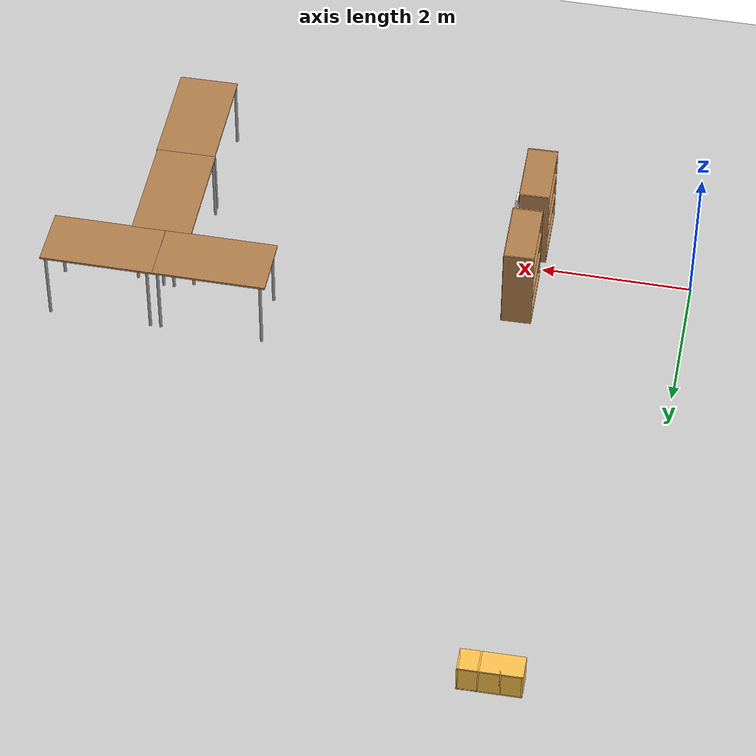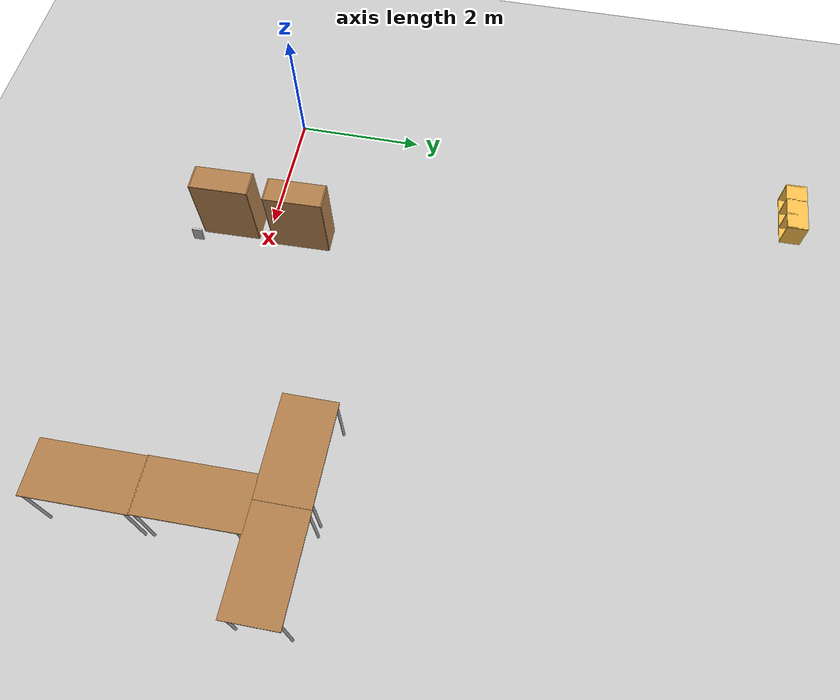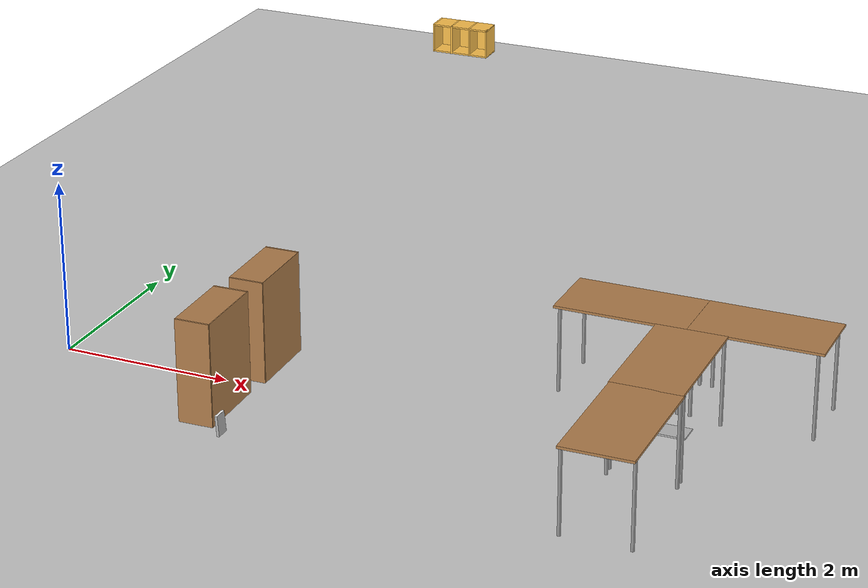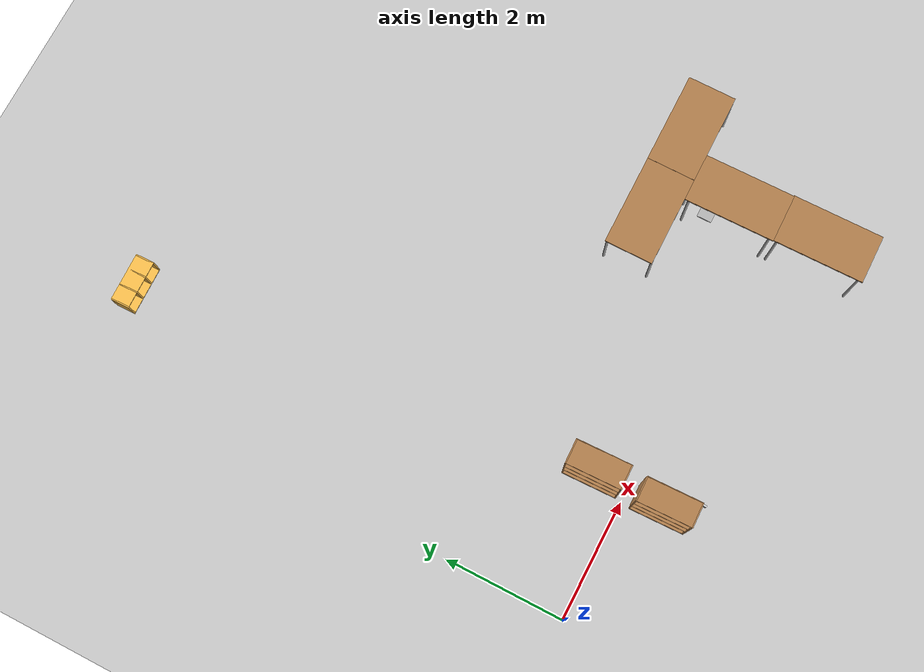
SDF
<sdf version="1.6">
 <world name="default">
  <model name="ground_plane">
   <static>1</static>
   <link name="link">
    <collision name="collision">
     <geometry><plane><normal>0 0 1</normal><size>100 100</size></plane></geometry>
     <surface><friction><ode><mu>100</mu><mu2>50</mu2></ode></friction></surface>
    </collision>
    <visual name="visual">
     <cast_shadows>0</cast_shadows>
     <geometry><plane><normal>0 0 1</normal><size>100 100</size></plane></geometry>
     <material>
      <script><uri>file://media/materials/scripts/gazebo.material</uri><name>Gazebo/Grey</name></script>
     </material>
    </visual>
   </link>
  </model>
  <model name="table_2">
   <static>1</static>
   <link name="link">
    <collision name="surface">
     <pose>0 0 1 0 -0 0</pose>
     <geometry><box><size>1.5 0.8 0.03</size></box></geometry>
     <surface><friction><ode><mu>0.6</mu><mu2>0.6</mu2></ode></friction></surface>
    </collision>
    <visual name="visual1">
     <pose>0 0 1 0 -0 0</pose>
     <geometry><box><size>1.5 0.8 0.03</size></box></geometry>
     <material>
      <script><uri>file://media/materials/scripts/gazebo.material</uri><name>Gazebo/Wood</name></script>
     </material>
    </visual>
    <collision name="front_left_leg">
     <pose>0.68 0.38 0.5 0 -0 0</pose>
     <geometry><cylinder><radius>0.02</radius><length>1</length></cylinder></geometry>
    </collision>
    <visual name="front_left_leg">
     <pose>0.68 0.38 0.5 0 -0 0</pose>
     <geometry><cylinder><radius>0.02</radius><length>1</length></cylinder></geometry>
     <material>
      <script><uri>file://media/materials/scripts/gazebo.material</uri><name>Gazebo/Grey</name></script>
     </material>
    </visual>
    <collision name="front_right_leg">
     <pose>0.68 -0.38 0.5 0 -0 0</pose>
     <geometry><cylinder><radius>0.02</radius><length>1</length></cylinder></geometry>
    </collision>
    <visual name="front_right_leg">
     <pose>0.68 -0.38 0.5 0 -0 0</pose>
     <geometry><cylinder><radius>0.02</radius><length>1</length></cylinder></geometry>
     <material>
      <script><uri>file://media/materials/scripts/gazebo.material</uri><name>Gazebo/Grey</name></script>
     </material>
    </visual>
    <collision name="back_right_leg">
     <pose>-0.68 -0.38 0.5 0 -0 0</pose>
     <geometry><cylinder><radius>0.02</radius><length>1</length></cylinder></geometry>
    </collision>
    <visual name="back_right_leg">
     <pose>-0.68 -0.38 0.5 0 -0 0</pose>
     <geometry><cylinder><radius>0.02</radius><length>1</length></cylinder></geometry>
     <material>
      <script><uri>file://media/materials/scripts/gazebo.material</uri><name>Gazebo/Grey</name></script>
     </material>
    </visual>
    <collision name="back_left_leg">
     <pose>-0.68 0.38 0.5 0 -0 0</pose>
     <geometry><cylinder><radius>0.02</radius><length>1</length></cylinder></geometry>
    </collision>
    <visual name="back_left_leg">
     <pose>-0.68 0.38 0.5 0 -0 0</pose>
     <geometry><cylinder><radius>0.02</radius><length>1</length></cylinder></geometry>
     <material>
      <script><uri>file://media/materials/scripts/gazebo.material</uri><name>Gazebo/Grey</name></script>
     </material>
    </visual>
   </link>
   <pose>6.92073 0.471427 0 0 0 -1.56058</pose>
  </model>
  <model name="table_3">
   <static>1</static>
   <link name="link">
    <collision name="surface">
     <pose>0 0 1 0 -0 0</pose>
     <geometry><box><size>1.5 0.8 0.03</size></box></geometry>
     <surface><friction><ode><mu>0.6</mu><mu2>0.6</mu2></ode></friction></surface>
    </collision>
    <visual name="visual1">
     <pose>0 0 1 0 -0 0</pose>
     <geometry><box><size>1.5 0.8 0.03</size></box></geometry>
     <material>
      <script><uri>file://media/materials/scripts/gazebo.material</uri><name>Gazebo/Wood</name></script>
     </material>
    </visual>
    <collision name="front_left_leg">
     <pose>0.68 0.38 0.5 0 -0 0</pose>
     <geometry><cylinder><radius>0.02</radius><length>1</length></cylinder></geometry>
    </collision>
    <visual name="front_left_leg">
     <pose>0.68 0.38 0.5 0 -0 0</pose>
     <geometry><cylinder><radius>0.02</radius><length>1</length></cylinder></geometry>
     <material>
      <script><uri>file://media/materials/scripts/gazebo.material</uri><name>Gazebo/Grey</name></script>
     </material>
    </visual>
    <collision name="front_right_leg">
     <pose>0.68 -0.38 0.5 0 -0 0</pose>
     <geometry><cylinder><radius>0.02</radius><length>1</length></cylinder></geometry>
    </collision>
    <visual name="front_right_leg">
     <pose>0.68 -0.38 0.5 0 -0 0</pose>
     <geometry><cylinder><radius>0.02</radius><length>1</length></cylinder></geometry>
     <material>
      <script><uri>file://media/materials/scripts/gazebo.material</uri><name>Gazebo/Grey</name></script>
     </material>
    </visual>
    <collision name="back_right_leg">
     <pose>-0.68 -0.38 0.5 0 -0 0</pose>
     <geometry><cylinder><radius>0.02</radius><length>1</length></cylinder></geometry>
    </collision>
    <visual name="back_right_leg">
     <pose>-0.68 -0.38 0.5 0 -0 0</pose>
     <geometry><cylinder><radius>0.02</radius><length>1</length></cylinder></geometry>
     <material>
      <script><uri>file://media/materials/scripts/gazebo.material</uri><name>Gazebo/Grey</name></script>
     </material>
    </visual>
    <collision name="back_left_leg">
     <pose>-0.68 0.38 0.5 0 -0 0</pose>
     <geometry><cylinder><radius>0.02</radius><length>1</length></cylinder></geometry>
    </collision>
    <visual name="back_left_leg">
     <pose>-0.68 0.38 0.5 0 -0 0</pose>
     <geometry><cylinder><radius>0.02</radius><length>1</length></cylinder></geometry>
     <material>
      <script><uri>file://media/materials/scripts/gazebo.material</uri><name>Gazebo/Grey</name></script>
     </material>
    </visual>
   </link>
   <pose>7.60586 1.61385 0 0 -0 0</pose>
  </model>
  <model name="table_4">
   <static>1</static>
   <link name="link">
    <collision name="surface">
     <pose>0 0 1 0 -0 0</pose>
     <geometry><box><size>1.5 0.8 0.03</size></box></geometry>
     <surface><friction><ode><mu>0.6</mu><mu2>0.6</mu2></ode></friction></surface>
    </collision>
    <visual name="visual1">
     <pose>0 0 1 0 -0 0</pose>
     <geometry><box><size>1.5 0.8 0.03</size></box></geometry>
     <material>
      <script><uri>file://media/materials/scripts/gazebo.material</uri><name>Gazebo/Wood</name></script>
     </material>
    </visual>
    <collision name="front_left_leg">
     <pose>0.68 0.38 0.5 0 -0 0</pose>
     <geometry><cylinder><radius>0.02</radius><length>1</length></cylinder></geometry>
    </collision>
    <visual name="front_left_leg">
     <pose>0.68 0.38 0.5 0 -0 0</pose>
     <geometry><cylinder><radius>0.02</radius><length>1</length></cylinder></geometry>
     <material>
      <script><uri>file://media/materials/scripts/gazebo.material</uri><name>Gazebo/Grey</name></script>
     </material>
    </visual>
    <collision name="front_right_leg">
     <pose>0.68 -0.38 0.5 0 -0 0</pose>
     <geometry><cylinder><radius>0.02</radius><length>1</length></cylinder></geometry>
    </collision>
    <visual name="front_right_leg">
     <pose>0.68 -0.38 0.5 0 -0 0</pose>
     <geometry><cylinder><radius>0.02</radius><length>1</length></cylinder></geometry>
     <material>
      <script><uri>file://media/materials/scripts/gazebo.material</uri><name>Gazebo/Grey</name></script>
     </material>
    </visual>
    <collision name="back_right_leg">
     <pose>-0.68 -0.38 0.5 0 -0 0</pose>
     <geometry><cylinder><radius>0.02</radius><length>1</length></cylinder></geometry>
    </collision>
    <visual name="back_right_leg">
     <pose>-0.68 -0.38 0.5 0 -0 0</pose>
     <geometry><cylinder><radius>0.02</radius><length>1</length></cylinder></geometry>
     <material>
      <script><uri>file://media/materials/scripts/gazebo.material</uri><name>Gazebo/Grey</name></script>
     </material>
    </visual>
    <collision name="back_left_leg">
     <pose>-0.68 0.38 0.5 0 -0 0</pose>
     <geometry><cylinder><radius>0.02</radius><length>1</length></cylinder></geometry>
    </collision>
    <visual name="back_left_leg">
     <pose>-0.68 0.38 0.5 0 -0 0</pose>
     <geometry><cylinder><radius>0.02</radius><length>1</length></cylinder></geometry>
     <material>
      <script><uri>file://media/materials/scripts/gazebo.material</uri><name>Gazebo/Grey</name></script>
     </material>
    </visual>
   </link>
   <pose>6.10498 1.61165 0 0 -0 0</pose>
  </model>
  <model name="bookshelf_clone_clone">
   <static>1</static>
   <link name="link">
    <inertial><mass>1</mass></inertial>
    <collision name="back">
     <pose>0 0.005 0.6 0 -0 0</pose>
     <geometry><box><size>0.9 0.01 1.2</size></box></geometry>
    </collision>
    <visual name="visual1">
     <pose>0 0.005 0.6 0 -0 0</pose>
     <geometry><box><size>0.9 0.01 1.2</size></box></geometry>
     <material>
      <script><uri>file://media/materials/scripts/gazebo.material</uri><name>Gazebo/Wood</name></script>
     </material>
    </visual>
    <collision name="left_side">
     <pose>0.45 -0.195 0.6 0 -0 0</pose>
     <geometry><box><size>0.02 0.4 1.2</size></box></geometry>
    </collision>
    <visual name="visual2">
     <pose>0.45 -0.195 0.6 0 -0 0</pose>
     <geometry><box><size>0.02 0.4 1.2</size></box></geometry>
     <material>
      <script><uri>file://media/materials/scripts/gazebo.material</uri><name>Gazebo/Wood</name></script>
     </material>
    </visual>
    <collision name="right_side">
     <pose>-0.45 -0.195 0.6 0 -0 0</pose>
     <geometry><box><size>0.02 0.4 1.2</size></box></geometry>
    </collision>
    <visual name="visual3">
     <pose>-0.45 -0.195 0.6 0 -0 0</pose>
     <geometry><box><size>0.02 0.4 1.2</size></box></geometry>
     <material>
      <script><uri>file://media/materials/scripts/gazebo.material</uri><name>Gazebo/Wood</name></script>
     </material>
    </visual>
    <collision name="bottom">
     <pose>0 -0.195 0.03 0 -0 0</pose>
     <geometry><box><size>0.88 0.4 0.06</size></box></geometry>
    </collision>
    <visual name="visual4">
     <pose>0 -0.195 0.03 0 -0 0</pose>
     <geometry><box><size>0.88 0.4 0.06</size></box></geometry>
     <material>
      <script><uri>file://media/materials/scripts/gazebo.material</uri><name>Gazebo/Wood</name></script>
     </material>
    </visual>
    <collision name="top">
     <pose>0 -0.195 1.19 0 -0 0</pose>
     <geometry><box><size>0.88 0.4 0.02</size></box></geometry>
    </collision>
    <visual name="visual5">
     <pose>0 -0.195 1.19 0 -0 0</pose>
     <geometry><box><size>0.88 0.4 0.02</size></box></geometry>
     <material>
      <script><uri>file://media/materials/scripts/gazebo.material</uri><name>Gazebo/Wood</name></script>
     </material>
    </visual>
    <collision name="low_shelf">
     <pose>0 -0.195 0.43 0 -0 0</pose>
     <geometry><box><size>0.88 0.4 0.02</size></box></geometry>
    </collision>
    <visual name="visual6">
     <pose>0 -0.195 0.43 0 -0 0</pose>
     <geometry><box><size>0.88 0.4 0.02</size></box></geometry>
     <material>
      <script><uri>file://media/materials/scripts/gazebo.material</uri><name>Gazebo/Wood</name></script>
     </material>
    </visual>
    <collision name="high_shelf">
     <pose>0 -0.195 0.8 0 -0 0</pose>
     <geometry><box><size>0.88 0.4 0.02</size></box></geometry>
    </collision>
    <visual name="visual7">
     <pose>0 -0.195 0.8 0 -0 0</pose>
     <geometry><box><size>0.88 0.4 0.02</size></box></geometry>
     <material>
      <script><uri>file://media/materials/scripts/gazebo.material</uri><name>Gazebo/Wood</name></script>
     </material>
    </visual>
   </link>
   <pose>2.40347 0.570608 0 0 0 -1.54682</pose>
  </model>
  <model name="bookshelf_clone_clone_clone">
   <static>1</static>
   <link name="link">
    <inertial><mass>1</mass></inertial>
    <collision name="back">
     <pose>0 0.005 0.6 0 -0 0</pose>
     <geometry><box><size>0.9 0.01 1.2</size></box></geometry>
    </collision>
    <visual name="visual1">
     <pose>0 0.005 0.6 0 -0 0</pose>
     <geometry><box><size>0.9 0.01 1.2</size></box></geometry>
     <material>
      <script><uri>file://media/materials/scripts/gazebo.material</uri><name>Gazebo/Wood</name></script>
     </material>
    </visual>
    <collision name="left_side">
     <pose>0.45 -0.195 0.6 0 -0 0</pose>
     <geometry><box><size>0.02 0.4 1.2</size></box></geometry>
    </collision>
    <visual name="visual2">
     <pose>0.45 -0.195 0.6 0 -0 0</pose>
     <geometry><box><size>0.02 0.4 1.2</size></box></geometry>
     <material>
      <script><uri>file://media/materials/scripts/gazebo.material</uri><name>Gazebo/Wood</name></script>
     </material>
    </visual>
    <collision name="right_side">
     <pose>-0.45 -0.195 0.6 0 -0 0</pose>
     <geometry><box><size>0.02 0.4 1.2</size></box></geometry>
    </collision>
    <visual name="visual3">
     <pose>-0.45 -0.195 0.6 0 -0 0</pose>
     <geometry><box><size>0.02 0.4 1.2</size></box></geometry>
     <material>
      <script><uri>file://media/materials/scripts/gazebo.material</uri><name>Gazebo/Wood</name></script>
     </material>
    </visual>
    <collision name="bottom">
     <pose>0 -0.195 0.03 0 -0 0</pose>
     <geometry><box><size>0.88 0.4 0.06</size></box></geometry>
    </collision>
    <visual name="visual4">
     <pose>0 -0.195 0.03 0 -0 0</pose>
     <geometry><box><size>0.88 0.4 0.06</size></box></geometry>
     <material>
      <script><uri>file://media/materials/scripts/gazebo.material</uri><name>Gazebo/Wood</name></script>
     </material>
    </visual>
    <collision name="top">
     <pose>0 -0.195 1.19 0 -0 0</pose>
     <geometry><box><size>0.88 0.4 0.02</size></box></geometry>
    </collision>
    <visual name="visual5">
     <pose>0 -0.195 1.19 0 -0 0</pose>
     <geometry><box><size>0.88 0.4 0.02</size></box></geometry>
     <material>
      <script><uri>file://media/materials/scripts/gazebo.material</uri><name>Gazebo/Wood</name></script>
     </material>
    </visual>
    <collision name="low_shelf">
     <pose>0 -0.195 0.43 0 -0 0</pose>
     <geometry><box><size>0.88 0.4 0.02</size></box></geometry>
    </collision>
    <visual name="visual6">
     <pose>0 -0.195 0.43 0 -0 0</pose>
     <geometry><box><size>0.88 0.4 0.02</size></box></geometry>
     <material>
      <script><uri>file://media/materials/scripts/gazebo.material</uri><name>Gazebo/Wood</name></script>
     </material>
    </visual>
    <collision name="high_shelf">
     <pose>0 -0.195 0.8 0 -0 0</pose>
     <geometry><box><size>0.88 0.4 0.02</size></box></geometry>
    </collision>
    <visual name="visual7">
     <pose>0 -0.195 0.8 0 -0 0</pose>
     <geometry><box><size>0.88 0.4 0.02</size></box></geometry>
     <material>
      <script><uri>file://media/materials/scripts/gazebo.material</uri><name>Gazebo/Wood</name></script>
     </material>
    </visual>
   </link>
   <pose>2.38145 -0.593739 0 0 0 -1.54682</pose>
  </model>
  <model name="table_2_clone">
   <static>1</static>
   <link name="link">
    <collision name="surface">
     <pose>0 0 1 0 -0 0</pose>
     <geometry><box><size>1.5 0.8 0.03</size></box></geometry>
     <surface><friction><ode><mu>0.6</mu><mu2>0.6</mu2></ode></friction></surface>
    </collision>
    <visual name="visual1">
     <pose>0 0 1 0 -0 0</pose>
     <geometry><box><size>1.5 0.8 0.03</size></box></geometry>
     <material>
      <script><uri>file://media/materials/scripts/gazebo.material</uri><name>Gazebo/Wood</name></script>
     </material>
    </visual>
    <collision name="front_left_leg">
     <pose>0.68 0.38 0.5 0 -0 0</pose>
     <geometry><cylinder><radius>0.02</radius><length>1</length></cylinder></geometry>
    </collision>
    <visual name="front_left_leg">
     <pose>0.68 0.38 0.5 0 -0 0</pose>
     <geometry><cylinder><radius>0.02</radius><length>1</length></cylinder></geometry>
     <material>
      <script><uri>file://media/materials/scripts/gazebo.material</uri><name>Gazebo/Grey</name></script>
     </material>
    </visual>
    <collision name="front_right_leg">
     <pose>0.68 -0.38 0.5 0 -0 0</pose>
     <geometry><cylinder><radius>0.02</radius><length>1</length></cylinder></geometry>
    </collision>
    <visual name="front_right_leg">
     <pose>0.68 -0.38 0.5 0 -0 0</pose>
     <geometry><cylinder><radius>0.02</radius><length>1</length></cylinder></geometry>
     <material>
      <script><uri>file://media/materials/scripts/gazebo.material</uri><name>Gazebo/Grey</name></script>
     </material>
    </visual>
    <collision name="back_right_leg">
     <pose>-0.68 -0.38 0.5 0 -0 0</pose>
     <geometry><cylinder><radius>0.02</radius><length>1</length></cylinder></geometry>
    </collision>
    <visual name="back_right_leg">
     <pose>-0.68 -0.38 0.5 0 -0 0</pose>
     <geometry><cylinder><radius>0.02</radius><length>1</length></cylinder></geometry>
     <material>
      <script><uri>file://media/materials/scripts/gazebo.material</uri><name>Gazebo/Grey</name></script>
     </material>
    </visual>
    <collision name="back_left_leg">
     <pose>-0.68 0.38 0.5 0 -0 0</pose>
     <geometry><cylinder><radius>0.02</radius><length>1</length></cylinder></geometry>
    </collision>
    <visual name="back_left_leg">
     <pose>-0.68 0.38 0.5 0 -0 0</pose>
     <geometry><cylinder><radius>0.02</radius><length>1</length></cylinder></geometry>
     <material>
      <script><uri>file://media/materials/scripts/gazebo.material</uri><name>Gazebo/Grey</name></script>
     </material>
    </visual>
   </link>
   <pose>6.94526 -1.0129 0 0 0 -1.56058</pose>
  </model>
  <model name="Wall_Cabinet_15x30">
   <pose>1.43346 7.89501 1.23993 0 -0 1.58817</pose>
   <link name="Wall_0">
    <pose>0 0.374 0.192 0 -0 0</pose>
    <inertial>
     <mass>0.9882</mass>
     <inertia><ixx>0.0072</ixx><iyy>0.0194</iyy><izz>0.0122</izz><ixy>0</ixy><ixz>0</ixz><iyz>0</iyz></inertia>
    </inertial>
    <collision name="Wall_0_Collision"><geometry><box><size>0.296 0.02 0.384</size></box></geometry></collision>
    <visual name="Wall_0_Visual">
     <geometry><box><size>0.296 0.02 0.384</size></box></geometry>
     <material>
      <script><uri>file://media/materials/scripts/gazebo.material</uri><name>Gazebo/Grey</name></script>
      <ambient>1 0.764706 0.305882 1</ambient>
     </material>
    </visual>
   </link>
   <joint name="0_2" type="fixed">
    <pose>0 0 0.192 0 -0 0</pose>
    <parent>Wall_2</parent>
    <child>Wall_0</child>
    <axis>
     <xyz>0 0 1</xyz>
     <use_parent_model_frame>0</use_parent_model_frame>
     <limit><lower>-1e+16</lower><upper>1e+16</upper></limit>
    </axis>
   </joint>
   <joint name="0_4" type="fixed">
    <pose>0 0 -0.192 0 -0 0</pose>
    <parent>Wall_4</parent>
    <child>Wall_0</child>
    <axis>
     <xyz>0 0 1</xyz>
     <use_parent_model_frame>0</use_parent_model_frame>
     <limit><lower>-1e+16</lower><upper>1e+16</upper></limit>
    </axis>
   </joint>
   <joint name="0_15" type="fixed">
    <pose>0.148 0 0 0 -0 0</pose>
    <parent>Wall_15</parent>
    <child>Wall_0</child>
    <axis>
     <xyz>1 0 0</xyz>
     <use_parent_model_frame>0</use_parent_model_frame>
     <limit><lower>-1e+16</lower><upper>1e+16</upper></limit>
    </axis>
   </joint>
   <link name="Wall_11">
    <pose>0 -0.132768 0.192 0 -0 0</pose>
    <inertial>
     <mass>0.9882</mass>
     <inertia><ixx>0.0072</ixx><iyy>0.0194</iyy><izz>0.0122</izz><ixy>0</ixy><ixz>0</ixz><iyz>0</iyz></inertia>
    </inertial>
    <collision name="Wall_11_Collision"><geometry><box><size>0.296 0.02 0.384</size></box></geometry></collision>
    <visual name="Wall_11_Visual">
     <geometry><box><size>0.296 0.02 0.384</size></box></geometry>
     <material>
      <script><uri>file://media/materials/scripts/gazebo.material</uri><name>Gazebo/Grey</name></script>
      <ambient>1 0.764706 0.305882 1</ambient>
     </material>
    </visual>
   </link>
   <joint name="11_2" type="fixed">
    <pose>0 0 0.192 0 -0 0</pose>
    <parent>Wall_2</parent>
    <child>Wall_11</child>
    <axis>
     <xyz>0 0 1</xyz>
     <use_parent_model_frame>0</use_parent_model_frame>
     <limit><lower>-1e+16</lower><upper>1e+16</upper></limit>
    </axis>
   </joint>
   <joint name="11_4" type="fixed">
    <pose>0 0 -0.192 0 -0 0</pose>
    <parent>Wall_4</parent>
    <child>Wall_11</child>
    <axis>
     <xyz>0 0 1</xyz>
     <use_parent_model_frame>0</use_parent_model_frame>
     <limit><lower>-1e+16</lower><upper>1e+16</upper></limit>
    </axis>
   </joint>
   <joint name="11_15" type="fixed">
    <pose>0.148 0 0 0 -0 0</pose>
    <parent>Wall_15</parent>
    <child>Wall_11</child>
    <axis>
     <xyz>1 0 0</xyz>
     <use_parent_model_frame>0</use_parent_model_frame>
     <limit><lower>-1e+16</lower><upper>1e+16</upper></limit>
    </axis>
   </joint>
   <link name="Wall_15">
    <pose>0.138 0 0.19 0 -0 0</pose>
    <inertial>
     <mass>2.5241</mass>
     <inertia><ixx>0.0305</ixx><iyy>0.1229</iyy><izz>0.1532</izz><ixy>0</ixy><ixz>0</ixz><iyz>0</iyz></inertia>
    </inertial>
    <collision name="Wall_15_Collision"><geometry><box><size>0.02 0.764 0.38</size></box></geometry></collision>
    <visual name="Wall_15_Visual">
     <geometry><box><size>0.02 0.764 0.38</size></box></geometry>
     <material>
      <script><uri>file://media/materials/scripts/gazebo.material</uri><name>Gazebo/Grey</name></script>
      <ambient>1 0.764706 0.305882 1</ambient>
     </material>
    </visual>
   </link>
   <joint name="15_2" type="fixed">
    <pose>0 0 0.19 0 -0 0</pose>
    <parent>Wall_2</parent>
    <child>Wall_15</child>
    <axis>
     <xyz>0 0 1</xyz>
     <use_parent_model_frame>0</use_parent_model_frame>
     <limit><lower>-1e+16</lower><upper>1e+16</upper></limit>
    </axis>
   </joint>
   <joint name="15_4" type="fixed">
    <pose>0 0 -0.19 0 -0 0</pose>
    <parent>Wall_4</parent>
    <child>Wall_15</child>
    <axis>
     <xyz>0 0 1</xyz>
     <use_parent_model_frame>0</use_parent_model_frame>
     <limit><lower>-1e+16</lower><upper>1e+16</upper></limit>
    </axis>
   </joint>
   <link name="Wall_2">
    <pose>0 0 0.374 0 -0 0</pose>
    <inertial>
     <mass>1.9765</mass>
     <inertia><ixx>0.0145</ixx><iyy>0.1116</iyy><izz>0.0972</izz><ixy>0</ixy><ixz>0</ixz><iyz>0</iyz></inertia>
    </inertial>
    <collision name="Wall_2_Collision"><geometry><box><size>0.296 0.768 0.02</size></box></geometry></collision>
    <visual name="Wall_2_Visual">
     <geometry><box><size>0.296 0.768 0.02</size></box></geometry>
     <material>
      <script><uri>file://media/materials/scripts/gazebo.material</uri><name>Gazebo/Grey</name></script>
      <ambient>1 0.764706 0.305882 1</ambient>
     </material>
    </visual>
   </link>
   <link name="Wall_4">
    <pose>0 0 0.01 0 -0 0</pose>
    <inertial>
     <mass>1.9765</mass>
     <inertia><ixx>0.0145</ixx><iyy>0.1116</iyy><izz>0.0972</izz><ixy>0</ixy><ixz>0</ixz><iyz>0</iyz></inertia>
    </inertial>
    <collision name="Wall_4_Collision"><geometry><box><size>0.296 0.768 0.02</size></box></geometry></collision>
    <visual name="Wall_4_Visual">
     <geometry><box><size>0.296 0.768 0.02</size></box></geometry>
     <material>
      <script><uri>file://media/materials/scripts/gazebo.material</uri><name>Gazebo/Grey</name></script>
      <ambient>1 0.764706 0.305882 1</ambient>
     </material>
    </visual>
    <pose>-0.181124 0 0 0 0 -1.5708</pose>
   </link>
   <link name="Wall_6">
    <pose>0 -0.374 0.192 0 -0 0</pose>
    <inertial>
     <mass>0.9882</mass>
     <inertia><ixx>0.0072</ixx><iyy>0.0194</iyy><izz>0.0122</izz><ixy>0</ixy><ixz>0</ixz><iyz>0</iyz></inertia>
    </inertial>
    <collision name="Wall_6_Collision"><geometry><box><size>0.296 0.02 0.384</size></box></geometry></collision>
    <visual name="Wall_6_Visual">
     <geometry><box><size>0.296 0.02 0.384</size></box></geometry>
     <material>
      <script><uri>file://media/materials/scripts/gazebo.material</uri><name>Gazebo/Grey</name></script>
      <ambient>1 0.764706 0.305882 1</ambient>
     </material>
    </visual>
   </link>
   <joint name="6_2" type="fixed">
    <pose>0 0 0.192 0 -0 0</pose>
    <parent>Wall_2</parent>
    <child>Wall_6</child>
    <axis>
     <xyz>0 0 1</xyz>
     <use_parent_model_frame>0</use_parent_model_frame>
     <limit><lower>-1e+16</lower><upper>1e+16</upper></limit>
    </axis>
   </joint>
   <joint name="6_4" type="fixed">
    <pose>0 0 -0.192 0 -0 0</pose>
    <parent>Wall_4</parent>
    <child>Wall_6</child>
    <axis>
     <xyz>0 0 1</xyz>
     <use_parent_model_frame>0</use_parent_model_frame>
     <limit><lower>-1e+16</lower><upper>1e+16</upper></limit>
    </axis>
   </joint>
   <joint name="6_15" type="fixed">
    <pose>0.148 0 0 0 -0 0</pose>
    <parent>Wall_15</parent>
    <child>Wall_6</child>
    <axis>
     <xyz>1 0 0</xyz>
     <use_parent_model_frame>0</use_parent_model_frame>
     <limit><lower>-1e+16</lower><upper>1e+16</upper></limit>
    </axis>
   </joint>
   <link name="Wall_8">
    <pose>0 0.120833 0.192 0 -0 0</pose>
    <inertial>
     <mass>0.9882</mass>
     <inertia><ixx>0.0072</ixx><iyy>0.0194</iyy><izz>0.0122</izz><ixy>0</ixy><ixz>0</ixz><iyz>0</iyz></inertia>
    </inertial>
    <collision name="Wall_8_Collision"><geometry><box><size>0.296 0.02 0.384</size></box></geometry></collision>
    <visual name="Wall_8_Visual">
     <geometry><box><size>0.296 0.02 0.384</size></box></geometry>
     <material>
      <script><uri>file://media/materials/scripts/gazebo.material</uri><name>Gazebo/Grey</name></script>
      <ambient>1 0.764706 0.305882 1</ambient>
     </material>
    </visual>
   </link>
   <joint name="8_2" type="fixed">
    <pose>0 0 0.192 0 -0 0</pose>
    <parent>Wall_2</parent>
    <child>Wall_8</child>
    <axis>
     <xyz>0 0 1</xyz>
     <use_parent_model_frame>0</use_parent_model_frame>
     <limit><lower>-1e+16</lower><upper>1e+16</upper></limit>
    </axis>
   </joint>
   <joint name="8_4" type="fixed">
    <pose>0 0 -0.192 0 -0 0</pose>
    <parent>Wall_4</parent>
    <child>Wall_8</child>
    <axis>
     <xyz>0 0 1</xyz>
     <use_parent_model_frame>0</use_parent_model_frame>
     <limit><lower>-1e+16</lower><upper>1e+16</upper></limit>
    </axis>
   </joint>
   <joint name="8_15" type="fixed">
    <pose>0.148 0 0 0 -0 0</pose>
    <parent>Wall_15</parent>
    <child>Wall_8</child>
    <axis>
     <xyz>1 0 0</xyz>
     <use_parent_model_frame>0</use_parent_model_frame>
     <limit><lower>-1e+16</lower><upper>1e+16</upper></limit>
    </axis>
   </joint>
   <static>1</static>
  </model>
  <model name="newspaper_1">
   <link name="link_0">
    <visual name="visual">
     <geometry><box><size>0.35 0.25 0.02</size></box></geometry>
     <material>
      <script>
       <uri>model://newspaper_1/materials/scripts</uri>
       <uri>model://newspaper_1/materials/textures</uri>
       <name>newspaper_1</name>
      </script>
     </material>
    </visual>
    <collision name="collision"><geometry><box><size>0.35 0.25 0.02</size></box></geometry></collision>
   </link>
   <static>1</static>
   <pose>6.88063 0.822565 0 0 -0 0</pose>
  </model>
  <model name="book_16">
   <link name="cover">
    <pose>0 -0.000108 0.015405 0 -0 0</pose>
    <visual name="visual">
     <geometry><box><size>0.245 0.16 0.03</size></box></geometry>
     <material>
      <script>
       <uri>model://book_16/materials/scripts</uri>
       <uri>model://book_16/materials/textures</uri>
       <name>book_16</name>
      </script>
     </material>
    </visual>
    <collision name="collision"><geometry><box><size>0.245 0.16 0.03</size></box></geometry></collision>
   </link>
   <link name="page">
    <pose>0 0.000608 0.015405 0 -0 0</pose>
    <visual name="visual">
     <geometry><box><size>0.24502 0.15862 0.028</size></box></geometry>
     <material>
      <lighting>1</lighting>
      <ambient>1 1 1 1</ambient>
      <diffuse>1 1 1 1</diffuse>
      <specular>0.01 0.01 0.01 1</specular>
      <emissive>0 0 0 1</emissive>
      <shader type="vertex"><normal_map>__default__</normal_map></shader>
     </material>
    </visual>
    <collision name="collision"><geometry><box><size>0.245 0.16 0.03</size></box></geometry></collision>
   </link>
   <static>1</static>
   <pose>2.5437 -1.10848 0.102286 3.14159 -1.49133 3.14159</pose>
  </model>
 </world>
</sdf>
